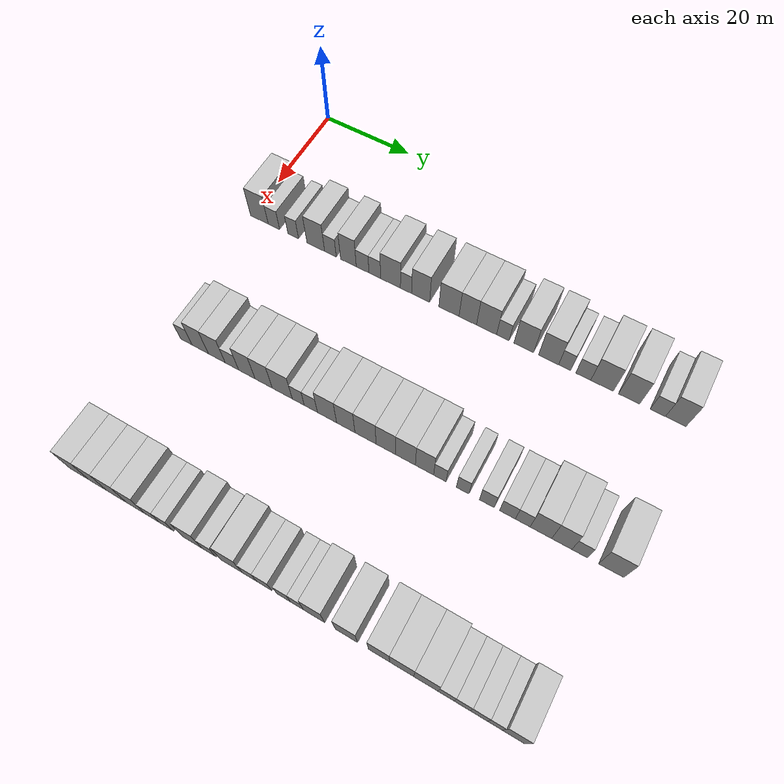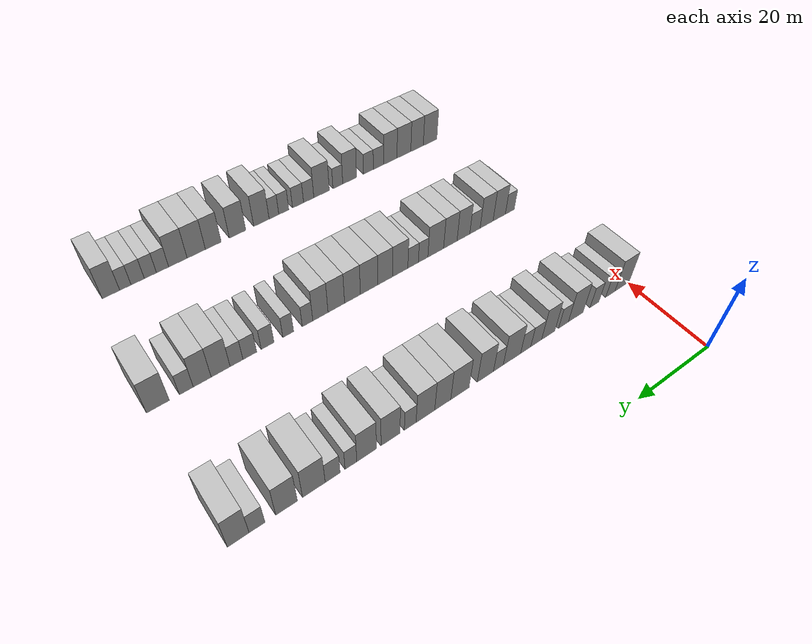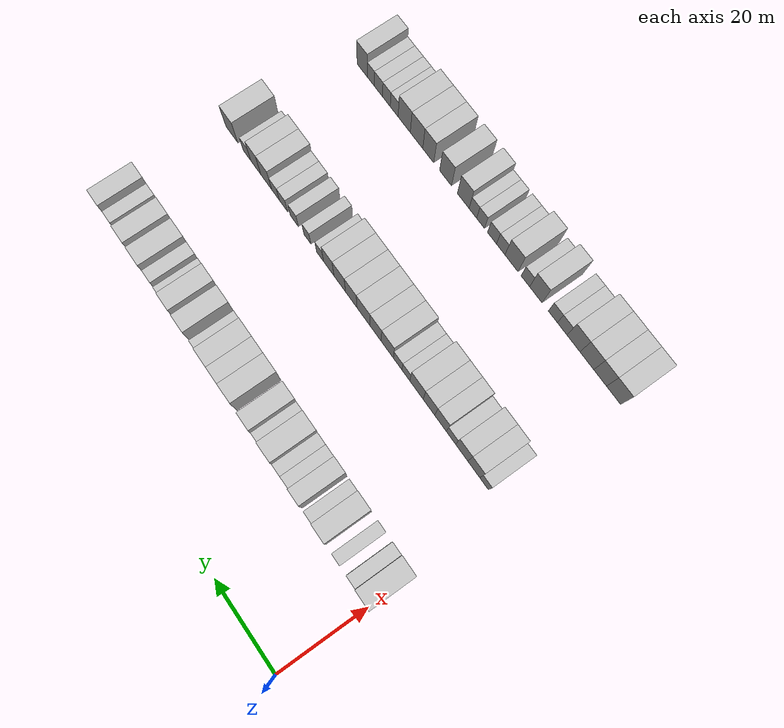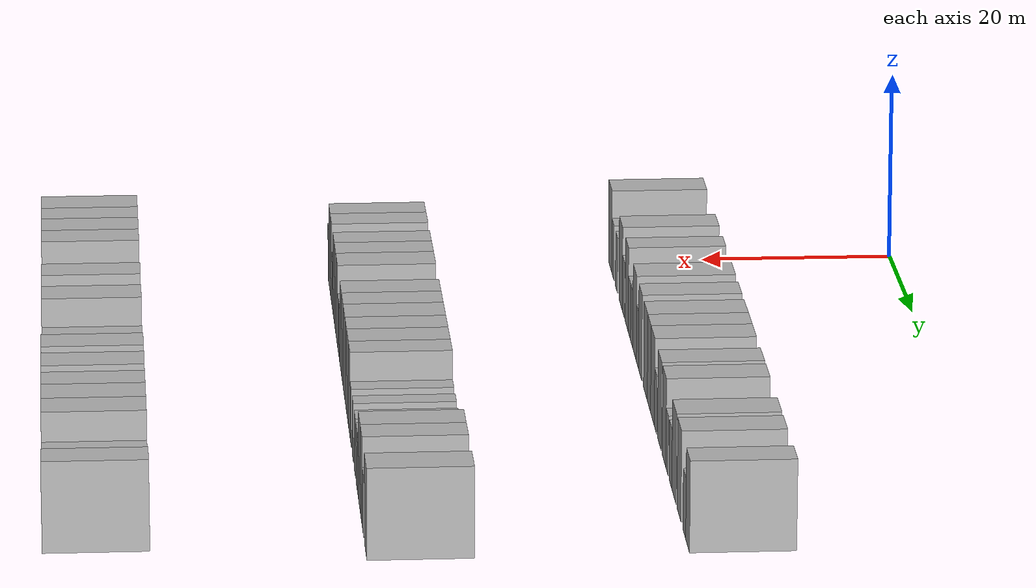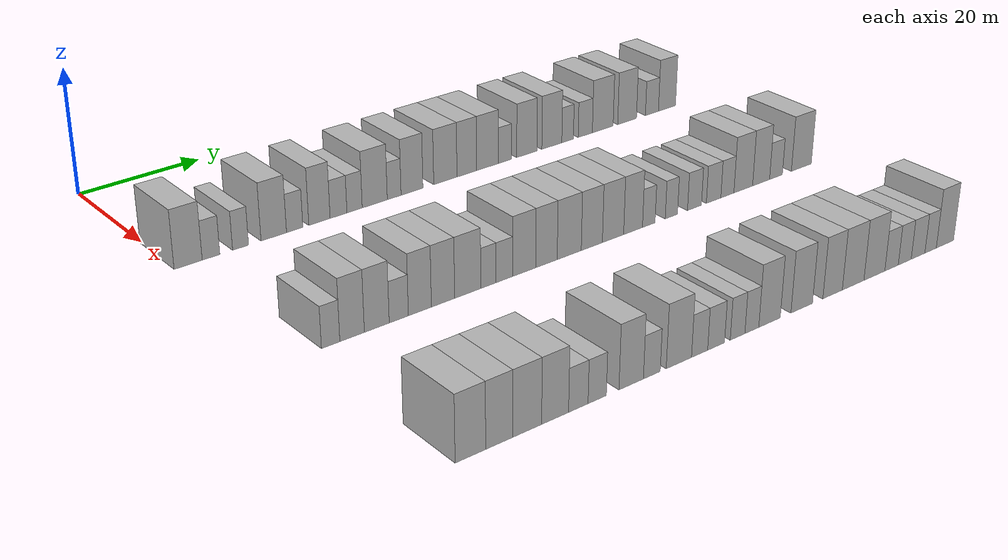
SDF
<sdf version="1.6">
 <world name="default">
  <model name="building_74">
   <static>1</static>
   <pose>25.0000 1.9099 0 0.000000 0.000000 0.000000</pose>
   <link name="link">
    <pose>0 0 4.50 0 0 0</pose>
    <collision name="collision"><geometry><box><size>10.0000 4.3023 9.0000</size></box></geometry></collision>
    <visual name="visual">
     <cast_shadows>0</cast_shadows>
     <geometry><box><size>10.0000 4.3023 9.0000</size></box></geometry>
     <material>
      <script>
       <uri>model://HANNAS_wall/materials/scripts</uri>
       <uri>model://HANNAS_wall/materials/textures</uri>
       <name>vrc/HANNAS_wall</name>
      </script>
     </material>
    </visual>
   </link>
  </model>
  <model name="building_75">
   <static>1</static>
   <pose>25.0000 5.4354 0 0.000000 0.000000 0.000000</pose>
   <link name="link">
    <pose>0 0 3.00 0 0 0</pose>
    <collision name="collision"><geometry><box><size>10.0000 2.7488 6.0000</size></box></geometry></collision>
    <visual name="visual">
     <cast_shadows>0</cast_shadows>
     <geometry><box><size>10.0000 2.7488 6.0000</size></box></geometry>
     <material>
      <script>
       <uri>model://HANNAS_wall/materials/scripts</uri>
       <uri>model://HANNAS_wall/materials/textures</uri>
       <name>vrc/HANNAS_wall</name>
      </script>
     </material>
    </visual>
   </link>
  </model>
  <model name="building_76">
   <static>1</static>
   <pose>25.0000 10.0811 0 0.000000 0.000000 0.000000</pose>
   <link name="link">
    <pose>0 0 3.00 0 0 0</pose>
    <collision name="collision"><geometry><box><size>10.0000 2.5425 6.0000</size></box></geometry></collision>
    <visual name="visual">
     <cast_shadows>0</cast_shadows>
     <geometry><box><size>10.0000 2.5425 6.0000</size></box></geometry>
     <material>
      <script>
       <uri>model://HANNAS_wall/materials/scripts</uri>
       <uri>model://HANNAS_wall/materials/textures</uri>
       <name>vrc/HANNAS_wall</name>
      </script>
     </material>
    </visual>
   </link>
  </model>
  <model name="building_77">
   <static>1</static>
   <pose>25.0000 15.4349 0 0.000000 0.000000 0.000000</pose>
   <link name="link">
    <pose>0 0 4.50 0 0 0</pose>
    <collision name="collision"><geometry><box><size>10.0000 4.1650 9.0000</size></box></geometry></collision>
    <visual name="visual">
     <cast_shadows>0</cast_shadows>
     <geometry><box><size>10.0000 4.1650 9.0000</size></box></geometry>
     <material>
      <script>
       <uri>model://HANNAS_wall/materials/scripts</uri>
       <uri>model://HANNAS_wall/materials/textures</uri>
       <name>vrc/HANNAS_wall</name>
      </script>
     </material>
    </visual>
   </link>
  </model>
  <model name="building_78">
   <static>1</static>
   <pose>25.0000 18.8737 0 0.000000 0.000000 0.000000</pose>
   <link name="link">
    <pose>0 0 3.00 0 0 0</pose>
    <collision name="collision"><geometry><box><size>10.0000 2.7126 6.0000</size></box></geometry></collision>
    <visual name="visual">
     <cast_shadows>0</cast_shadows>
     <geometry><box><size>10.0000 2.7126 6.0000</size></box></geometry>
     <material>
      <script>
       <uri>model://HANNAS_wall/materials/scripts</uri>
       <uri>model://HANNAS_wall/materials/textures</uri>
       <name>vrc/HANNAS_wall</name>
      </script>
     </material>
    </visual>
   </link>
  </model>
  <model name="building_79">
   <static>1</static>
   <pose>25.0000 23.0302 0 0.000000 0.000000 0.000000</pose>
   <link name="link">
    <pose>0 0 4.50 0 0 0</pose>
    <collision name="collision"><geometry><box><size>10.0000 3.6004 9.0000</size></box></geometry></collision>
    <visual name="visual">
     <cast_shadows>0</cast_shadows>
     <geometry><box><size>10.0000 3.6004 9.0000</size></box></geometry>
     <material>
      <script>
       <uri>model://HANNAS_wall/materials/scripts</uri>
       <uri>model://HANNAS_wall/materials/textures</uri>
       <name>vrc/HANNAS_wall</name>
      </script>
     </material>
    </visual>
   </link>
  </model>
  <model name="building_80">
   <static>1</static>
   <pose>25.0000 26.2764 0 0.000000 0.000000 0.000000</pose>
   <link name="link">
    <pose>0 0 3.00 0 0 0</pose>
    <collision name="collision"><geometry><box><size>10.0000 2.8920 6.0000</size></box></geometry></collision>
    <visual name="visual">
     <cast_shadows>0</cast_shadows>
     <geometry><box><size>10.0000 2.8920 6.0000</size></box></geometry>
     <material>
      <script>
       <uri>model://HANNAS_wall/materials/scripts</uri>
       <uri>model://HANNAS_wall/materials/textures</uri>
       <name>vrc/HANNAS_wall</name>
      </script>
     </material>
    </visual>
   </link>
  </model>
  <model name="building_81">
   <static>1</static>
   <pose>25.0000 29.0515 0 0.000000 0.000000 0.000000</pose>
   <link name="link">
    <pose>0 0 3.00 0 0 0</pose>
    <collision name="collision"><geometry><box><size>10.0000 2.6582 6.0000</size></box></geometry></collision>
    <visual name="visual">
     <cast_shadows>0</cast_shadows>
     <geometry><box><size>10.0000 2.6582 6.0000</size></box></geometry>
     <material>
      <script>
       <uri>model://HANNAS_wall/materials/scripts</uri>
       <uri>model://HANNAS_wall/materials/textures</uri>
       <name>vrc/HANNAS_wall</name>
      </script>
     </material>
    </visual>
   </link>
  </model>
  <model name="building_82">
   <static>1</static>
   <pose>25.0000 32.6018 0 0.000000 0.000000 0.000000</pose>
   <link name="link">
    <pose>0 0 4.50 0 0 0</pose>
    <collision name="collision"><geometry><box><size>10.0000 4.4423 9.0000</size></box></geometry></collision>
    <visual name="visual">
     <cast_shadows>0</cast_shadows>
     <geometry><box><size>10.0000 4.4423 9.0000</size></box></geometry>
     <material>
      <script>
       <uri>model://HANNAS_wall/materials/scripts</uri>
       <uri>model://HANNAS_wall/materials/textures</uri>
       <name>vrc/HANNAS_wall</name>
      </script>
     </material>
    </visual>
   </link>
  </model>
  <model name="building_83">
   <static>1</static>
   <pose>25.0000 36.0602 0 0.000000 0.000000 0.000000</pose>
   <link name="link">
    <pose>0 0 3.00 0 0 0</pose>
    <collision name="collision"><geometry><box><size>10.0000 2.4746 6.0000</size></box></geometry></collision>
    <visual name="visual">
     <cast_shadows>0</cast_shadows>
     <geometry><box><size>10.0000 2.4746 6.0000</size></box></geometry>
     <material>
      <script>
       <uri>model://HANNAS_wall/materials/scripts</uri>
       <uri>model://HANNAS_wall/materials/textures</uri>
       <name>vrc/HANNAS_wall</name>
      </script>
     </material>
    </visual>
   </link>
  </model>
  <model name="building_84">
   <static>1</static>
   <pose>25.0000 39.2930 0 0.000000 0.000000 0.000000</pose>
   <link name="link">
    <pose>0 0 4.50 0 0 0</pose>
    <collision name="collision"><geometry><box><size>10.0000 3.9908 9.0000</size></box></geometry></collision>
    <visual name="visual">
     <cast_shadows>0</cast_shadows>
     <geometry><box><size>10.0000 3.9908 9.0000</size></box></geometry>
     <material>
      <script>
       <uri>model://HANNAS_wall/materials/scripts</uri>
       <uri>model://HANNAS_wall/materials/textures</uri>
       <name>vrc/HANNAS_wall</name>
      </script>
     </material>
    </visual>
   </link>
  </model>
  <model name="building_85">
   <static>1</static>
   <pose>25.0000 45.4702 0 0.000000 0.000000 0.000000</pose>
   <link name="link">
    <pose>0 0 4.50 0 0 0</pose>
    <collision name="collision"><geometry><box><size>10.0000 4.3637 9.0000</size></box></geometry></collision>
    <visual name="visual">
     <cast_shadows>0</cast_shadows>
     <geometry><box><size>10.0000 4.3637 9.0000</size></box></geometry>
     <material>
      <script>
       <uri>model://HANNAS_wall/materials/scripts</uri>
       <uri>model://HANNAS_wall/materials/textures</uri>
       <name>vrc/HANNAS_wall</name>
      </script>
     </material>
    </visual>
   </link>
  </model>
  <model name="building_86">
   <static>1</static>
   <pose>25.0000 49.5237 0 0.000000 0.000000 0.000000</pose>
   <link name="link">
    <pose>0 0 4.50 0 0 0</pose>
    <collision name="collision"><geometry><box><size>10.0000 3.7433 9.0000</size></box></geometry></collision>
    <visual name="visual">
     <cast_shadows>0</cast_shadows>
     <geometry><box><size>10.0000 3.7433 9.0000</size></box></geometry>
     <material>
      <script>
       <uri>model://HANNAS_wall/materials/scripts</uri>
       <uri>model://HANNAS_wall/materials/textures</uri>
       <name>vrc/HANNAS_wall</name>
      </script>
     </material>
    </visual>
   </link>
  </model>
  <model name="building_87">
   <static>1</static>
   <pose>25.0000 53.5204 0 0.000000 0.000000 0.000000</pose>
   <link name="link">
    <pose>0 0 4.50 0 0 0</pose>
    <collision name="collision"><geometry><box><size>10.0000 4.2500 9.0000</size></box></geometry></collision>
    <visual name="visual">
     <cast_shadows>0</cast_shadows>
     <geometry><box><size>10.0000 4.2500 9.0000</size></box></geometry>
     <material>
      <script>
       <uri>model://HANNAS_wall/materials/scripts</uri>
       <uri>model://HANNAS_wall/materials/textures</uri>
       <name>vrc/HANNAS_wall</name>
      </script>
     </material>
    </visual>
   </link>
  </model>
  <model name="building_88">
   <static>1</static>
   <pose>25.0000 56.9498 0 0.000000 0.000000 0.000000</pose>
   <link name="link">
    <pose>0 0 3.00 0 0 0</pose>
    <collision name="collision"><geometry><box><size>10.0000 2.6087 6.0000</size></box></geometry></collision>
    <visual name="visual">
     <cast_shadows>0</cast_shadows>
     <geometry><box><size>10.0000 2.6087 6.0000</size></box></geometry>
     <material>
      <script>
       <uri>model://HANNAS_wall/materials/scripts</uri>
       <uri>model://HANNAS_wall/materials/textures</uri>
       <name>vrc/HANNAS_wall</name>
      </script>
     </material>
    </visual>
   </link>
  </model>
  <model name="building_89">
   <static>1</static>
   <pose>25.0000 61.2896 0 0.000000 0.000000 0.000000</pose>
   <link name="link">
    <pose>0 0 4.50 0 0 0</pose>
    <collision name="collision"><geometry><box><size>10.0000 4.0708 9.0000</size></box></geometry></collision>
    <visual name="visual">
     <cast_shadows>0</cast_shadows>
     <geometry><box><size>10.0000 4.0708 9.0000</size></box></geometry>
     <material>
      <script>
       <uri>model://HANNAS_wall/materials/scripts</uri>
       <uri>model://HANNAS_wall/materials/textures</uri>
       <name>vrc/HANNAS_wall</name>
      </script>
     </material>
    </visual>
   </link>
  </model>
  <model name="building_90">
   <static>1</static>
   <pose>25.0000 66.3783 0 0.000000 0.000000 0.000000</pose>
   <link name="link">
    <pose>0 0 4.50 0 0 0</pose>
    <collision name="collision"><geometry><box><size>10.0000 4.1066 9.0000</size></box></geometry></collision>
    <visual name="visual">
     <cast_shadows>0</cast_shadows>
     <geometry><box><size>10.0000 4.1066 9.0000</size></box></geometry>
     <material>
      <script>
       <uri>model://HANNAS_wall/materials/scripts</uri>
       <uri>model://HANNAS_wall/materials/textures</uri>
       <name>vrc/HANNAS_wall</name>
      </script>
     </material>
    </visual>
   </link>
  </model>
  <model name="building_91">
   <static>1</static>
   <pose>25.0000 69.6425 0 0.000000 0.000000 0.000000</pose>
   <link name="link">
    <pose>0 0 3.00 0 0 0</pose>
    <collision name="collision"><geometry><box><size>10.0000 2.4218 6.0000</size></box></geometry></collision>
    <visual name="visual">
     <cast_shadows>0</cast_shadows>
     <geometry><box><size>10.0000 2.4218 6.0000</size></box></geometry>
     <material>
      <script>
       <uri>model://HANNAS_wall/materials/scripts</uri>
       <uri>model://HANNAS_wall/materials/textures</uri>
       <name>vrc/HANNAS_wall</name>
      </script>
     </material>
    </visual>
   </link>
  </model>
  <model name="building_92">
   <static>1</static>
   <pose>25.0000 73.3520 0 0.000000 0.000000 0.000000</pose>
   <link name="link">
    <pose>0 0 3.00 0 0 0</pose>
    <collision name="collision"><geometry><box><size>10.0000 2.9972 6.0000</size></box></geometry></collision>
    <visual name="visual">
     <cast_shadows>0</cast_shadows>
     <geometry><box><size>10.0000 2.9972 6.0000</size></box></geometry>
     <material>
      <script>
       <uri>model://HANNAS_wall/materials/scripts</uri>
       <uri>model://HANNAS_wall/materials/textures</uri>
       <name>vrc/HANNAS_wall</name>
      </script>
     </material>
    </visual>
   </link>
  </model>
  <model name="building_93">
   <static>1</static>
   <pose>25.0000 77.0826 0 0.000000 0.000000 0.000000</pose>
   <link name="link">
    <pose>0 0 4.50 0 0 0</pose>
    <collision name="collision"><geometry><box><size>10.0000 4.4640 9.0000</size></box></geometry></collision>
    <visual name="visual">
     <cast_shadows>0</cast_shadows>
     <geometry><box><size>10.0000 4.4640 9.0000</size></box></geometry>
     <material>
      <script>
       <uri>model://HANNAS_wall/materials/scripts</uri>
       <uri>model://HANNAS_wall/materials/textures</uri>
       <name>vrc/HANNAS_wall</name>
      </script>
     </material>
    </visual>
   </link>
  </model>
  <model name="building_94">
   <static>1</static>
   <pose>25.0000 82.3754 0 0.000000 0.000000 0.000000</pose>
   <link name="link">
    <pose>0 0 4.50 0 0 0</pose>
    <collision name="collision"><geometry><box><size>10.0000 4.1217 9.0000</size></box></geometry></collision>
    <visual name="visual">
     <cast_shadows>0</cast_shadows>
     <geometry><box><size>10.0000 4.1217 9.0000</size></box></geometry>
     <material>
      <script>
       <uri>model://HANNAS_wall/materials/scripts</uri>
       <uri>model://HANNAS_wall/materials/textures</uri>
       <name>vrc/HANNAS_wall</name>
      </script>
     </material>
    </visual>
   </link>
  </model>
  <model name="building_95">
   <static>1</static>
   <pose>25.0000 87.8962 0 0.000000 0.000000 0.000000</pose>
   <link name="link">
    <pose>0 0 3.00 0 0 0</pose>
    <collision name="collision"><geometry><box><size>10.0000 2.9198 6.0000</size></box></geometry></collision>
    <visual name="visual">
     <cast_shadows>0</cast_shadows>
     <geometry><box><size>10.0000 2.9198 6.0000</size></box></geometry>
     <material>
      <script>
       <uri>model://HANNAS_wall/materials/scripts</uri>
       <uri>model://HANNAS_wall/materials/textures</uri>
       <name>vrc/HANNAS_wall</name>
      </script>
     </material>
    </visual>
   </link>
  </model>
  <model name="building_96">
   <static>1</static>
   <pose>25.0000 91.3041 0 0.000000 0.000000 0.000000</pose>
   <link name="link">
    <pose>0 0 4.50 0 0 0</pose>
    <collision name="collision"><geometry><box><size>10.0000 3.8960 9.0000</size></box></geometry></collision>
    <visual name="visual">
     <cast_shadows>0</cast_shadows>
     <geometry><box><size>10.0000 3.8960 9.0000</size></box></geometry>
     <material>
      <script>
       <uri>model://HANNAS_wall/materials/scripts</uri>
       <uri>model://HANNAS_wall/materials/textures</uri>
       <name>vrc/HANNAS_wall</name>
      </script>
     </material>
    </visual>
   </link>
  </model>
  <model name="building_213">
   <static>1</static>
   <pose>55.0000 5.5471 0 0.000000 0.000000 0.000000</pose>
   <link name="link">
    <pose>0 0 3.00 0 0 0</pose>
    <collision name="collision"><geometry><box><size>10.0000 2.7200 6.0000</size></box></geometry></collision>
    <visual name="visual">
     <cast_shadows>0</cast_shadows>
     <geometry><box><size>10.0000 2.7200 6.0000</size></box></geometry>
     <material>
      <script>
       <uri>model://HANNAS_wall/materials/scripts</uri>
       <uri>model://HANNAS_wall/materials/textures</uri>
       <name>vrc/HANNAS_wall</name>
      </script>
     </material>
    </visual>
   </link>
  </model>
  <model name="building_214">
   <static>1</static>
   <pose>55.0000 8.7535 0 0.000000 0.000000 0.000000</pose>
   <link name="link">
    <pose>0 0 4.50 0 0 0</pose>
    <collision name="collision"><geometry><box><size>10.0000 3.6927 9.0000</size></box></geometry></collision>
    <visual name="visual">
     <cast_shadows>0</cast_shadows>
     <geometry><box><size>10.0000 3.6927 9.0000</size></box></geometry>
     <material>
      <script>
       <uri>model://HANNAS_wall/materials/scripts</uri>
       <uri>model://HANNAS_wall/materials/textures</uri>
       <name>vrc/HANNAS_wall</name>
      </script>
     </material>
    </visual>
   </link>
  </model>
  <model name="building_215">
   <static>1</static>
   <pose>55.0000 12.5069 0 0.000000 0.000000 0.000000</pose>
   <link name="link">
    <pose>0 0 4.50 0 0 0</pose>
    <collision name="collision"><geometry><box><size>10.0000 3.8142 9.0000</size></box></geometry></collision>
    <visual name="visual">
     <cast_shadows>0</cast_shadows>
     <geometry><box><size>10.0000 3.8142 9.0000</size></box></geometry>
     <material>
      <script>
       <uri>model://HANNAS_wall/materials/scripts</uri>
       <uri>model://HANNAS_wall/materials/textures</uri>
       <name>vrc/HANNAS_wall</name>
      </script>
     </material>
    </visual>
   </link>
  </model>
  <model name="building_216">
   <static>1</static>
   <pose>55.0000 15.9104 0 0.000000 0.000000 0.000000</pose>
   <link name="link">
    <pose>0 0 3.00 0 0 0</pose>
    <collision name="collision"><geometry><box><size>10.0000 2.9927 6.0000</size></box></geometry></collision>
    <visual name="visual">
     <cast_shadows>0</cast_shadows>
     <geometry><box><size>10.0000 2.9927 6.0000</size></box></geometry>
     <material>
      <script>
       <uri>model://HANNAS_wall/materials/scripts</uri>
       <uri>model://HANNAS_wall/materials/textures</uri>
       <name>vrc/HANNAS_wall</name>
      </script>
     </material>
    </visual>
   </link>
  </model>
  <model name="building_217">
   <static>1</static>
   <pose>55.0000 19.2365 0 0.000000 0.000000 0.000000</pose>
   <link name="link">
    <pose>0 0 4.50 0 0 0</pose>
    <collision name="collision"><geometry><box><size>10.0000 3.6597 9.0000</size></box></geometry></collision>
    <visual name="visual">
     <cast_shadows>0</cast_shadows>
     <geometry><box><size>10.0000 3.6597 9.0000</size></box></geometry>
     <material>
      <script>
       <uri>model://HANNAS_wall/materials/scripts</uri>
       <uri>model://HANNAS_wall/materials/textures</uri>
       <name>vrc/HANNAS_wall</name>
      </script>
     </material>
    </visual>
   </link>
  </model>
  <model name="building_218">
   <static>1</static>
   <pose>55.0000 22.9519 0 0.000000 0.000000 0.000000</pose>
   <link name="link">
    <pose>0 0 4.50 0 0 0</pose>
    <collision name="collision"><geometry><box><size>10.0000 3.7712 9.0000</size></box></geometry></collision>
    <visual name="visual">
     <cast_shadows>0</cast_shadows>
     <geometry><box><size>10.0000 3.7712 9.0000</size></box></geometry>
     <material>
      <script>
       <uri>model://HANNAS_wall/materials/scripts</uri>
       <uri>model://HANNAS_wall/materials/textures</uri>
       <name>vrc/HANNAS_wall</name>
      </script>
     </material>
    </visual>
   </link>
  </model>
  <model name="building_219">
   <static>1</static>
   <pose>55.0000 26.9970 0 0.000000 0.000000 0.000000</pose>
   <link name="link">
    <pose>0 0 4.50 0 0 0</pose>
    <collision name="collision"><geometry><box><size>10.0000 4.3188 9.0000</size></box></geometry></collision>
    <visual name="visual">
     <cast_shadows>0</cast_shadows>
     <geometry><box><size>10.0000 4.3188 9.0000</size></box></geometry>
     <material>
      <script>
       <uri>model://HANNAS_wall/materials/scripts</uri>
       <uri>model://HANNAS_wall/materials/textures</uri>
       <name>vrc/HANNAS_wall</name>
      </script>
     </material>
    </visual>
   </link>
  </model>
  <model name="building_220">
   <static>1</static>
   <pose>55.0000 30.4443 0 0.000000 0.000000 0.000000</pose>
   <link name="link">
    <pose>0 0 3.00 0 0 0</pose>
    <collision name="collision"><geometry><box><size>10.0000 2.5758 6.0000</size></box></geometry></collision>
    <visual name="visual">
     <cast_shadows>0</cast_shadows>
     <geometry><box><size>10.0000 2.5758 6.0000</size></box></geometry>
     <material>
      <script>
       <uri>model://HANNAS_wall/materials/scripts</uri>
       <uri>model://HANNAS_wall/materials/textures</uri>
       <name>vrc/HANNAS_wall</name>
      </script>
     </material>
    </visual>
   </link>
  </model>
  <model name="building_221">
   <static>1</static>
   <pose>55.0000 33.1329 0 0.000000 0.000000 0.000000</pose>
   <link name="link">
    <pose>0 0 3.00 0 0 0</pose>
    <collision name="collision"><geometry><box><size>10.0000 2.8014 6.0000</size></box></geometry></collision>
    <visual name="visual">
     <cast_shadows>0</cast_shadows>
     <geometry><box><size>10.0000 2.8014 6.0000</size></box></geometry>
     <material>
      <script>
       <uri>model://HANNAS_wall/materials/scripts</uri>
       <uri>model://HANNAS_wall/materials/textures</uri>
       <name>vrc/HANNAS_wall</name>
      </script>
     </material>
    </visual>
   </link>
  </model>
  <model name="building_222">
   <static>1</static>
   <pose>55.0000 36.5438 0 0.000000 0.000000 0.000000</pose>
   <link name="link">
    <pose>0 0 4.50 0 0 0</pose>
    <collision name="collision"><geometry><box><size>10.0000 4.0203 9.0000</size></box></geometry></collision>
    <visual name="visual">
     <cast_shadows>0</cast_shadows>
     <geometry><box><size>10.0000 4.0203 9.0000</size></box></geometry>
     <material>
      <script>
       <uri>model://HANNAS_wall/materials/scripts</uri>
       <uri>model://HANNAS_wall/materials/textures</uri>
       <name>vrc/HANNAS_wall</name>
      </script>
     </material>
    </visual>
   </link>
  </model>
  <model name="building_223">
   <static>1</static>
   <pose>55.0000 40.4626 0 0.000000 0.000000 0.000000</pose>
   <link name="link">
    <pose>0 0 4.50 0 0 0</pose>
    <collision name="collision"><geometry><box><size>10.0000 3.8173 9.0000</size></box></geometry></collision>
    <visual name="visual">
     <cast_shadows>0</cast_shadows>
     <geometry><box><size>10.0000 3.8173 9.0000</size></box></geometry>
     <material>
      <script>
       <uri>model://HANNAS_wall/materials/scripts</uri>
       <uri>model://HANNAS_wall/materials/textures</uri>
       <name>vrc/HANNAS_wall</name>
      </script>
     </material>
    </visual>
   </link>
  </model>
  <model name="building_224">
   <static>1</static>
   <pose>55.0000 44.5436 0 0.000000 0.000000 0.000000</pose>
   <link name="link">
    <pose>0 0 4.50 0 0 0</pose>
    <collision name="collision"><geometry><box><size>10.0000 4.3447 9.0000</size></box></geometry></collision>
    <visual name="visual">
     <cast_shadows>0</cast_shadows>
     <geometry><box><size>10.0000 4.3447 9.0000</size></box></geometry>
     <material>
      <script>
       <uri>model://HANNAS_wall/materials/scripts</uri>
       <uri>model://HANNAS_wall/materials/textures</uri>
       <name>vrc/HANNAS_wall</name>
      </script>
     </material>
    </visual>
   </link>
  </model>
  <model name="building_225">
   <static>1</static>
   <pose>55.0000 48.6651 0 0.000000 0.000000 0.000000</pose>
   <link name="link">
    <pose>0 0 4.50 0 0 0</pose>
    <collision name="collision"><geometry><box><size>10.0000 3.8983 9.0000</size></box></geometry></collision>
    <visual name="visual">
     <cast_shadows>0</cast_shadows>
     <geometry><box><size>10.0000 3.8983 9.0000</size></box></geometry>
     <material>
      <script>
       <uri>model://HANNAS_wall/materials/scripts</uri>
       <uri>model://HANNAS_wall/materials/textures</uri>
       <name>vrc/HANNAS_wall</name>
      </script>
     </material>
    </visual>
   </link>
  </model>
  <model name="building_226">
   <static>1</static>
   <pose>55.0000 52.6104 0 0.000000 0.000000 0.000000</pose>
   <link name="link">
    <pose>0 0 4.50 0 0 0</pose>
    <collision name="collision"><geometry><box><size>10.0000 3.9923 9.0000</size></box></geometry></collision>
    <visual name="visual">
     <cast_shadows>0</cast_shadows>
     <geometry><box><size>10.0000 3.9923 9.0000</size></box></geometry>
     <material>
      <script>
       <uri>model://HANNAS_wall/materials/scripts</uri>
       <uri>model://HANNAS_wall/materials/textures</uri>
       <name>vrc/HANNAS_wall</name>
      </script>
     </material>
    </visual>
   </link>
  </model>
  <model name="building_227">
   <static>1</static>
   <pose>55.0000 56.4094 0 0.000000 0.000000 0.000000</pose>
   <link name="link">
    <pose>0 0 4.50 0 0 0</pose>
    <collision name="collision"><geometry><box><size>10.0000 3.6058 9.0000</size></box></geometry></collision>
    <visual name="visual">
     <cast_shadows>0</cast_shadows>
     <geometry><box><size>10.0000 3.6058 9.0000</size></box></geometry>
     <material>
      <script>
       <uri>model://HANNAS_wall/materials/scripts</uri>
       <uri>model://HANNAS_wall/materials/textures</uri>
       <name>vrc/HANNAS_wall</name>
      </script>
     </material>
    </visual>
   </link>
  </model>
  <model name="building_228">
   <static>1</static>
   <pose>55.0000 59.4323 0 0.000000 0.000000 0.000000</pose>
   <link name="link">
    <pose>0 0 3.00 0 0 0</pose>
    <collision name="collision"><geometry><box><size>10.0000 2.4399 6.0000</size></box></geometry></collision>
    <visual name="visual">
     <cast_shadows>0</cast_shadows>
     <geometry><box><size>10.0000 2.4399 6.0000</size></box></geometry>
     <material>
      <script>
       <uri>model://HANNAS_wall/materials/scripts</uri>
       <uri>model://HANNAS_wall/materials/textures</uri>
       <name>vrc/HANNAS_wall</name>
      </script>
     </material>
    </visual>
   </link>
  </model>
  <model name="building_229">
   <static>1</static>
   <pose>55.0000 63.8685 0 0.000000 0.000000 0.000000</pose>
   <link name="link">
    <pose>0 0 3.00 0 0 0</pose>
    <collision name="collision"><geometry><box><size>10.0000 2.4325 6.0000</size></box></geometry></collision>
    <visual name="visual">
     <cast_shadows>0</cast_shadows>
     <geometry><box><size>10.0000 2.4325 6.0000</size></box></geometry>
     <material>
      <script>
       <uri>model://HANNAS_wall/materials/scripts</uri>
       <uri>model://HANNAS_wall/materials/textures</uri>
       <name>vrc/HANNAS_wall</name>
      </script>
     </material>
    </visual>
   </link>
  </model>
  <model name="building_230">
   <static>1</static>
   <pose>55.0000 68.4978 0 0.000000 0.000000 0.000000</pose>
   <link name="link">
    <pose>0 0 3.00 0 0 0</pose>
    <collision name="collision"><geometry><box><size>10.0000 2.8260 6.0000</size></box></geometry></collision>
    <visual name="visual">
     <cast_shadows>0</cast_shadows>
     <geometry><box><size>10.0000 2.8260 6.0000</size></box></geometry>
     <material>
      <script>
       <uri>model://HANNAS_wall/materials/scripts</uri>
       <uri>model://HANNAS_wall/materials/textures</uri>
       <name>vrc/HANNAS_wall</name>
      </script>
     </material>
    </visual>
   </link>
  </model>
  <model name="building_231">
   <static>1</static>
   <pose>55.0000 72.4036 0 0.000000 0.000000 0.000000</pose>
   <link name="link">
    <pose>0 0 3.00 0 0 0</pose>
    <collision name="collision"><geometry><box><size>10.0000 2.9856 6.0000</size></box></geometry></collision>
    <visual name="visual">
     <cast_shadows>0</cast_shadows>
     <geometry><box><size>10.0000 2.9856 6.0000</size></box></geometry>
     <material>
      <script>
       <uri>model://HANNAS_wall/materials/scripts</uri>
       <uri>model://HANNAS_wall/materials/textures</uri>
       <name>vrc/HANNAS_wall</name>
      </script>
     </material>
    </visual>
   </link>
  </model>
  <model name="building_232">
   <static>1</static>
   <pose>55.0000 75.2606 0 0.000000 0.000000 0.000000</pose>
   <link name="link">
    <pose>0 0 3.00 0 0 0</pose>
    <collision name="collision"><geometry><box><size>10.0000 2.7284 6.0000</size></box></geometry></collision>
    <visual name="visual">
     <cast_shadows>0</cast_shadows>
     <geometry><box><size>10.0000 2.7284 6.0000</size></box></geometry>
     <material>
      <script>
       <uri>model://HANNAS_wall/materials/scripts</uri>
       <uri>model://HANNAS_wall/materials/textures</uri>
       <name>vrc/HANNAS_wall</name>
      </script>
     </material>
    </visual>
   </link>
  </model>
  <model name="building_233">
   <static>1</static>
   <pose>55.0000 78.6078 0 0.000000 0.000000 0.000000</pose>
   <link name="link">
    <pose>0 0 4.50 0 0 0</pose>
    <collision name="collision"><geometry><box><size>10.0000 3.9659 9.0000</size></box></geometry></collision>
    <visual name="visual">
     <cast_shadows>0</cast_shadows>
     <geometry><box><size>10.0000 3.9659 9.0000</size></box></geometry>
     <material>
      <script>
       <uri>model://HANNAS_wall/materials/scripts</uri>
       <uri>model://HANNAS_wall/materials/textures</uri>
       <name>vrc/HANNAS_wall</name>
      </script>
     </material>
    </visual>
   </link>
  </model>
  <model name="building_234">
   <static>1</static>
   <pose>55.0000 82.4236 0 0.000000 0.000000 0.000000</pose>
   <link name="link">
    <pose>0 0 4.50 0 0 0</pose>
    <collision name="collision"><geometry><box><size>10.0000 3.6656 9.0000</size></box></geometry></collision>
    <visual name="visual">
     <cast_shadows>0</cast_shadows>
     <geometry><box><size>10.0000 3.6656 9.0000</size></box></geometry>
     <material>
      <script>
       <uri>model://HANNAS_wall/materials/scripts</uri>
       <uri>model://HANNAS_wall/materials/textures</uri>
       <name>vrc/HANNAS_wall</name>
      </script>
     </material>
    </visual>
   </link>
  </model>
  <model name="building_235">
   <static>1</static>
   <pose>55.0000 85.6532 0 0.000000 0.000000 0.000000</pose>
   <link name="link">
    <pose>0 0 3.00 0 0 0</pose>
    <collision name="collision"><geometry><box><size>10.0000 2.7936 6.0000</size></box></geometry></collision>
    <visual name="visual">
     <cast_shadows>0</cast_shadows>
     <geometry><box><size>10.0000 2.7936 6.0000</size></box></geometry>
     <material>
      <script>
       <uri>model://HANNAS_wall/materials/scripts</uri>
       <uri>model://HANNAS_wall/materials/textures</uri>
       <name>vrc/HANNAS_wall</name>
      </script>
     </material>
    </visual>
   </link>
  </model>
  <model name="building_236">
   <static>1</static>
   <pose>55.0000 91.2777 0 0.000000 0.000000 0.000000</pose>
   <link name="link">
    <pose>0 0 4.50 0 0 0</pose>
    <collision name="collision"><geometry><box><size>10.0000 4.4555 9.0000</size></box></geometry></collision>
    <visual name="visual">
     <cast_shadows>0</cast_shadows>
     <geometry><box><size>10.0000 4.4555 9.0000</size></box></geometry>
     <material>
      <script>
       <uri>model://HANNAS_wall/materials/scripts</uri>
       <uri>model://HANNAS_wall/materials/textures</uri>
       <name>vrc/HANNAS_wall</name>
      </script>
     </material>
    </visual>
   </link>
  </model>
  <model name="building_349">
   <static>1</static>
   <pose>85.0000 4.6607 0 0.000000 0.000000 0.000000</pose>
   <link name="link">
    <pose>0 0 4.50 0 0 0</pose>
    <collision name="collision"><geometry><box><size>10.0000 4.2832 9.0000</size></box></geometry></collision>
    <visual name="visual">
     <cast_shadows>0</cast_shadows>
     <geometry><box><size>10.0000 4.2832 9.0000</size></box></geometry>
     <material>
      <script>
       <uri>model://HANNAS_wall/materials/scripts</uri>
       <uri>model://HANNAS_wall/materials/textures</uri>
       <name>vrc/HANNAS_wall</name>
      </script>
     </material>
    </visual>
   </link>
  </model>
  <model name="building_350">
   <static>1</static>
   <pose>85.0000 8.7445 0 0.000000 0.000000 0.000000</pose>
   <link name="link">
    <pose>0 0 4.50 0 0 0</pose>
    <collision name="collision"><geometry><box><size>10.0000 3.8844 9.0000</size></box></geometry></collision>
    <visual name="visual">
     <cast_shadows>0</cast_shadows>
     <geometry><box><size>10.0000 3.8844 9.0000</size></box></geometry>
     <material>
      <script>
       <uri>model://HANNAS_wall/materials/scripts</uri>
       <uri>model://HANNAS_wall/materials/textures</uri>
       <name>vrc/HANNAS_wall</name>
      </script>
     </material>
    </visual>
   </link>
  </model>
  <model name="building_351">
   <static>1</static>
   <pose>85.0000 12.8073 0 0.000000 0.000000 0.000000</pose>
   <link name="link">
    <pose>0 0 4.50 0 0 0</pose>
    <collision name="collision"><geometry><box><size>10.0000 4.2412 9.0000</size></box></geometry></collision>
    <visual name="visual">
     <cast_shadows>0</cast_shadows>
     <geometry><box><size>10.0000 4.2412 9.0000</size></box></geometry>
     <material>
      <script>
       <uri>model://HANNAS_wall/materials/scripts</uri>
       <uri>model://HANNAS_wall/materials/textures</uri>
       <name>vrc/HANNAS_wall</name>
      </script>
     </material>
    </visual>
   </link>
  </model>
  <model name="building_352">
   <static>1</static>
   <pose>85.0000 16.9613 0 0.000000 0.000000 0.000000</pose>
   <link name="link">
    <pose>0 0 4.50 0 0 0</pose>
    <collision name="collision"><geometry><box><size>10.0000 4.0668 9.0000</size></box></geometry></collision>
    <visual name="visual">
     <cast_shadows>0</cast_shadows>
     <geometry><box><size>10.0000 4.0668 9.0000</size></box></geometry>
     <material>
      <script>
       <uri>model://HANNAS_wall/materials/scripts</uri>
       <uri>model://HANNAS_wall/materials/textures</uri>
       <name>vrc/HANNAS_wall</name>
      </script>
     </material>
    </visual>
   </link>
  </model>
  <model name="building_353">
   <static>1</static>
   <pose>85.0000 20.4933 0 0.000000 0.000000 0.000000</pose>
   <link name="link">
    <pose>0 0 3.00 0 0 0</pose>
    <collision name="collision"><geometry><box><size>10.0000 2.9973 6.0000</size></box></geometry></collision>
    <visual name="visual">
     <cast_shadows>0</cast_shadows>
     <geometry><box><size>10.0000 2.9973 6.0000</size></box></geometry>
     <material>
      <script>
       <uri>model://HANNAS_wall/materials/scripts</uri>
       <uri>model://HANNAS_wall/materials/textures</uri>
       <name>vrc/HANNAS_wall</name>
      </script>
     </material>
    </visual>
   </link>
  </model>
  <model name="building_354">
   <static>1</static>
   <pose>85.0000 23.4223 0 0.000000 0.000000 0.000000</pose>
   <link name="link">
    <pose>0 0 3.00 0 0 0</pose>
    <collision name="collision"><geometry><box><size>10.0000 2.8607 6.0000</size></box></geometry></collision>
    <visual name="visual">
     <cast_shadows>0</cast_shadows>
     <geometry><box><size>10.0000 2.8607 6.0000</size></box></geometry>
     <material>
      <script>
       <uri>model://HANNAS_wall/materials/scripts</uri>
       <uri>model://HANNAS_wall/materials/textures</uri>
       <name>vrc/HANNAS_wall</name>
      </script>
     </material>
    </visual>
   </link>
  </model>
  <model name="building_355">
   <static>1</static>
   <pose>85.0000 28.8266 0 0.000000 0.000000 0.000000</pose>
   <link name="link">
    <pose>0 0 4.50 0 0 0</pose>
    <collision name="collision"><geometry><box><size>10.0000 3.9480 9.0000</size></box></geometry></collision>
    <visual name="visual">
     <cast_shadows>0</cast_shadows>
     <geometry><box><size>10.0000 3.9480 9.0000</size></box></geometry>
     <material>
      <script>
       <uri>model://HANNAS_wall/materials/scripts</uri>
       <uri>model://HANNAS_wall/materials/textures</uri>
       <name>vrc/HANNAS_wall</name>
      </script>
     </material>
    </visual>
   </link>
  </model>
  <model name="building_356">
   <static>1</static>
   <pose>85.0000 32.1786 0 0.000000 0.000000 0.000000</pose>
   <link name="link">
    <pose>0 0 3.00 0 0 0</pose>
    <collision name="collision"><geometry><box><size>10.0000 2.7561 6.0000</size></box></geometry></collision>
    <visual name="visual">
     <cast_shadows>0</cast_shadows>
     <geometry><box><size>10.0000 2.7561 6.0000</size></box></geometry>
     <material>
      <script>
       <uri>model://HANNAS_wall/materials/scripts</uri>
       <uri>model://HANNAS_wall/materials/textures</uri>
       <name>vrc/HANNAS_wall</name>
      </script>
     </material>
    </visual>
   </link>
  </model>
  <model name="building_357">
   <static>1</static>
   <pose>85.0000 36.6880 0 0.000000 0.000000 0.000000</pose>
   <link name="link">
    <pose>0 0 4.50 0 0 0</pose>
    <collision name="collision"><geometry><box><size>10.0000 4.2626 9.0000</size></box></geometry></collision>
    <visual name="visual">
     <cast_shadows>0</cast_shadows>
     <geometry><box><size>10.0000 4.2626 9.0000</size></box></geometry>
     <material>
      <script>
       <uri>model://HANNAS_wall/materials/scripts</uri>
       <uri>model://HANNAS_wall/materials/textures</uri>
       <name>vrc/HANNAS_wall</name>
      </script>
     </material>
    </visual>
   </link>
  </model>
  <model name="building_358">
   <static>1</static>
   <pose>85.0000 40.2077 0 0.000000 0.000000 0.000000</pose>
   <link name="link">
    <pose>0 0 3.00 0 0 0</pose>
    <collision name="collision"><geometry><box><size>10.0000 2.7768 6.0000</size></box></geometry></collision>
    <visual name="visual">
     <cast_shadows>0</cast_shadows>
     <geometry><box><size>10.0000 2.7768 6.0000</size></box></geometry>
     <material>
      <script>
       <uri>model://HANNAS_wall/materials/scripts</uri>
       <uri>model://HANNAS_wall/materials/textures</uri>
       <name>vrc/HANNAS_wall</name>
      </script>
     </material>
    </visual>
   </link>
  </model>
  <model name="building_359">
   <static>1</static>
   <pose>85.0000 43.0694 0 0.000000 0.000000 0.000000</pose>
   <link name="link">
    <pose>0 0 3.00 0 0 0</pose>
    <collision name="collision"><geometry><box><size>10.0000 2.9466 6.0000</size></box></geometry></collision>
    <visual name="visual">
     <cast_shadows>0</cast_shadows>
     <geometry><box><size>10.0000 2.9466 6.0000</size></box></geometry>
     <material>
      <script>
       <uri>model://HANNAS_wall/materials/scripts</uri>
       <uri>model://HANNAS_wall/materials/textures</uri>
       <name>vrc/HANNAS_wall</name>
      </script>
     </material>
    </visual>
   </link>
  </model>
  <model name="building_360">
   <static>1</static>
   <pose>85.0000 46.8489 0 0.000000 0.000000 0.000000</pose>
   <link name="link">
    <pose>0 0 3.00 0 0 0</pose>
    <collision name="collision"><geometry><box><size>10.0000 2.6123 6.0000</size></box></geometry></collision>
    <visual name="visual">
     <cast_shadows>0</cast_shadows>
     <geometry><box><size>10.0000 2.6123 6.0000</size></box></geometry>
     <material>
      <script>
       <uri>model://HANNAS_wall/materials/scripts</uri>
       <uri>model://HANNAS_wall/materials/textures</uri>
       <name>vrc/HANNAS_wall</name>
      </script>
     </material>
    </visual>
   </link>
  </model>
  <model name="building_361">
   <static>1</static>
   <pose>85.0000 49.4088 0 0.000000 0.000000 0.000000</pose>
   <link name="link">
    <pose>0 0 3.00 0 0 0</pose>
    <collision name="collision"><geometry><box><size>10.0000 2.5075 6.0000</size></box></geometry></collision>
    <visual name="visual">
     <cast_shadows>0</cast_shadows>
     <geometry><box><size>10.0000 2.5075 6.0000</size></box></geometry>
     <material>
      <script>
       <uri>model://HANNAS_wall/materials/scripts</uri>
       <uri>model://HANNAS_wall/materials/textures</uri>
       <name>vrc/HANNAS_wall</name>
      </script>
     </material>
    </visual>
   </link>
  </model>
  <model name="building_362">
   <static>1</static>
   <pose>85.0000 52.6327 0 0.000000 0.000000 0.000000</pose>
   <link name="link">
    <pose>0 0 4.50 0 0 0</pose>
    <collision name="collision"><geometry><box><size>10.0000 3.9403 9.0000</size></box></geometry></collision>
    <visual name="visual">
     <cast_shadows>0</cast_shadows>
     <geometry><box><size>10.0000 3.9403 9.0000</size></box></geometry>
     <material>
      <script>
       <uri>model://HANNAS_wall/materials/scripts</uri>
       <uri>model://HANNAS_wall/materials/textures</uri>
       <name>vrc/HANNAS_wall</name>
      </script>
     </material>
    </visual>
   </link>
  </model>
  <model name="building_363">
   <static>1</static>
   <pose>85.0000 58.6435 0 0.000000 0.000000 0.000000</pose>
   <link name="link">
    <pose>0 0 4.50 0 0 0</pose>
    <collision name="collision"><geometry><box><size>10.0000 4.0812 9.0000</size></box></geometry></collision>
    <visual name="visual">
     <cast_shadows>0</cast_shadows>
     <geometry><box><size>10.0000 4.0812 9.0000</size></box></geometry>
     <material>
      <script>
       <uri>model://HANNAS_wall/materials/scripts</uri>
       <uri>model://HANNAS_wall/materials/textures</uri>
       <name>vrc/HANNAS_wall</name>
      </script>
     </material>
    </visual>
   </link>
  </model>
  <model name="building_364">
   <static>1</static>
   <pose>85.0000 64.5843 0 0.000000 0.000000 0.000000</pose>
   <link name="link">
    <pose>0 0 4.50 0 0 0</pose>
    <collision name="collision"><geometry><box><size>10.0000 3.8004 9.0000</size></box></geometry></collision>
    <visual name="visual">
     <cast_shadows>0</cast_shadows>
     <geometry><box><size>10.0000 3.8004 9.0000</size></box></geometry>
     <material>
      <script>
       <uri>model://HANNAS_wall/materials/scripts</uri>
       <uri>model://HANNAS_wall/materials/textures</uri>
       <name>vrc/HANNAS_wall</name>
      </script>
     </material>
    </visual>
   </link>
  </model>
  <model name="building_365">
   <static>1</static>
   <pose>85.0000 68.6449 0 0.000000 0.000000 0.000000</pose>
   <link name="link">
    <pose>0 0 4.50 0 0 0</pose>
    <collision name="collision"><geometry><box><size>10.0000 4.3207 9.0000</size></box></geometry></collision>
    <visual name="visual">
     <cast_shadows>0</cast_shadows>
     <geometry><box><size>10.0000 4.3207 9.0000</size></box></geometry>
     <material>
      <script>
       <uri>model://HANNAS_wall/materials/scripts</uri>
       <uri>model://HANNAS_wall/materials/textures</uri>
       <name>vrc/HANNAS_wall</name>
      </script>
     </material>
    </visual>
   </link>
  </model>
  <model name="building_366">
   <static>1</static>
   <pose>85.0000 72.9364 0 0.000000 0.000000 0.000000</pose>
   <link name="link">
    <pose>0 0 4.50 0 0 0</pose>
    <collision name="collision"><geometry><box><size>10.0000 4.2623 9.0000</size></box></geometry></collision>
    <visual name="visual">
     <cast_shadows>0</cast_shadows>
     <geometry><box><size>10.0000 4.2623 9.0000</size></box></geometry>
     <material>
      <script>
       <uri>model://HANNAS_wall/materials/scripts</uri>
       <uri>model://HANNAS_wall/materials/textures</uri>
       <name>vrc/HANNAS_wall</name>
      </script>
     </material>
    </visual>
   </link>
  </model>
  <model name="building_367">
   <static>1</static>
   <pose>85.0000 76.4627 0 0.000000 0.000000 0.000000</pose>
   <link name="link">
    <pose>0 0 3.00 0 0 0</pose>
    <collision name="collision"><geometry><box><size>10.0000 2.7902 6.0000</size></box></geometry></collision>
    <visual name="visual">
     <cast_shadows>0</cast_shadows>
     <geometry><box><size>10.0000 2.7902 6.0000</size></box></geometry>
     <material>
      <script>
       <uri>model://HANNAS_wall/materials/scripts</uri>
       <uri>model://HANNAS_wall/materials/textures</uri>
       <name>vrc/HANNAS_wall</name>
      </script>
     </material>
    </visual>
   </link>
  </model>
  <model name="building_368">
   <static>1</static>
   <pose>85.0000 79.2170 0 0.000000 0.000000 0.000000</pose>
   <link name="link">
    <pose>0 0 3.00 0 0 0</pose>
    <collision name="collision"><geometry><box><size>10.0000 2.7185 6.0000</size></box></geometry></collision>
    <visual name="visual">
     <cast_shadows>0</cast_shadows>
     <geometry><box><size>10.0000 2.7185 6.0000</size></box></geometry>
     <material>
      <script>
       <uri>model://HANNAS_wall/materials/scripts</uri>
       <uri>model://HANNAS_wall/materials/textures</uri>
       <name>vrc/HANNAS_wall</name>
      </script>
     </material>
    </visual>
   </link>
  </model>
  <model name="building_369">
   <static>1</static>
   <pose>85.0000 82.0358 0 0.000000 0.000000 0.000000</pose>
   <link name="link">
    <pose>0 0 3.00 0 0 0</pose>
    <collision name="collision"><geometry><box><size>10.0000 2.9192 6.0000</size></box></geometry></collision>
    <visual name="visual">
     <cast_shadows>0</cast_shadows>
     <geometry><box><size>10.0000 2.9192 6.0000</size></box></geometry>
     <material>
      <script>
       <uri>model://HANNAS_wall/materials/scripts</uri>
       <uri>model://HANNAS_wall/materials/textures</uri>
       <name>vrc/HANNAS_wall</name>
      </script>
     </material>
    </visual>
   </link>
  </model>
  <model name="building_370">
   <static>1</static>
   <pose>85.0000 84.7298 0 0.000000 0.000000 0.000000</pose>
   <link name="link">
    <pose>0 0 3.00 0 0 0</pose>
    <collision name="collision"><geometry><box><size>10.0000 2.4687 6.0000</size></box></geometry></collision>
    <visual name="visual">
     <cast_shadows>0</cast_shadows>
     <geometry><box><size>10.0000 2.4687 6.0000</size></box></geometry>
     <material>
      <script>
       <uri>model://HANNAS_wall/materials/scripts</uri>
       <uri>model://HANNAS_wall/materials/textures</uri>
       <name>vrc/HANNAS_wall</name>
      </script>
     </material>
    </visual>
   </link>
  </model>
  <model name="building_371">
   <static>1</static>
   <pose>85.0000 87.8475 0 0.000000 0.000000 0.000000</pose>
   <link name="link">
    <pose>0 0 4.50 0 0 0</pose>
    <collision name="collision"><geometry><box><size>10.0000 3.7667 9.0000</size></box></geometry></collision>
    <visual name="visual">
     <cast_shadows>0</cast_shadows>
     <geometry><box><size>10.0000 3.7667 9.0000</size></box></geometry>
     <material>
      <script>
       <uri>model://HANNAS_wall/materials/scripts</uri>
       <uri>model://HANNAS_wall/materials/textures</uri>
       <name>vrc/HANNAS_wall</name>
      </script>
     </material>
    </visual>
   </link>
  </model>
 </world>
</sdf>
